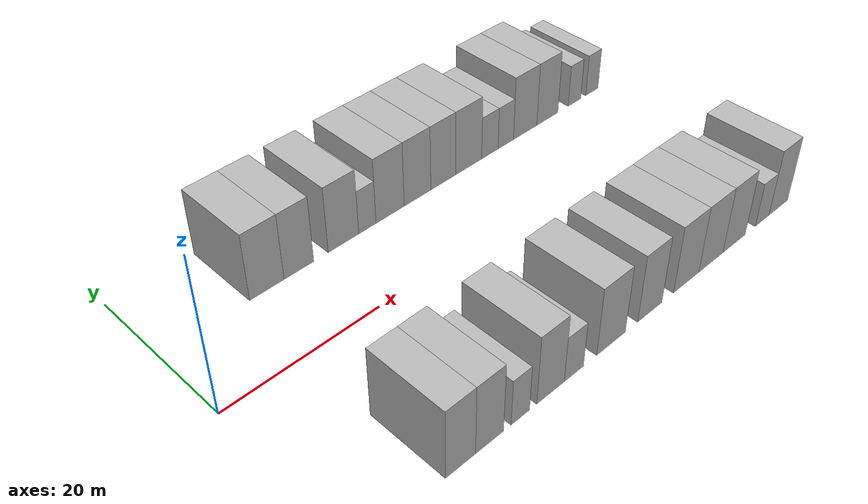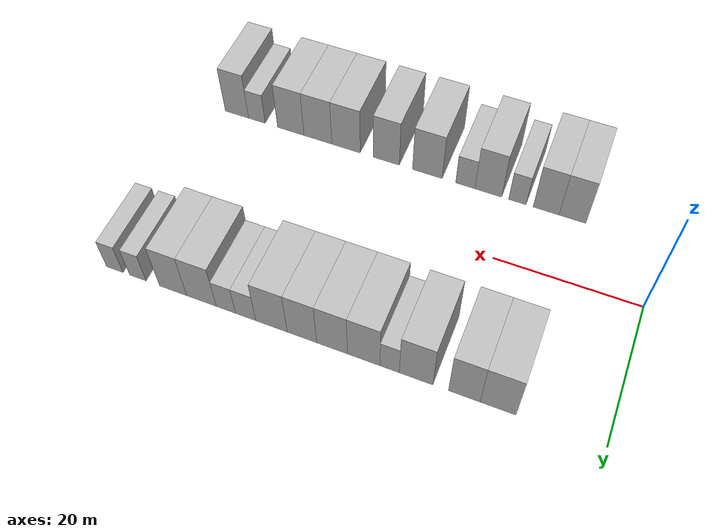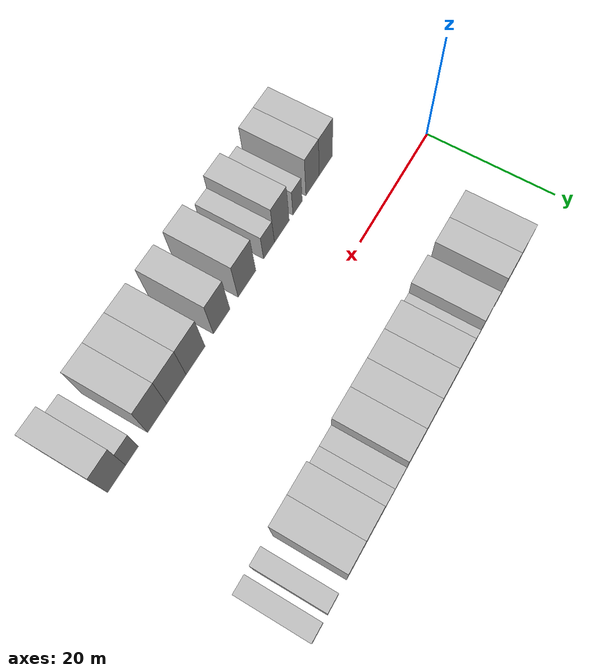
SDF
<sdf version="1.6">
 <world name="default">
  <model name="building_1">
   <static>1</static>
   <pose>13.2403 15.0000 0 0.000000 0.000000 1.570796</pose>
   <link name="link">
    <pose>0 0 4.50 0 0 0</pose>
    <collision name="collision"><geometry><box><size>10.0000 4.4805 9.0000</size></box></geometry></collision>
    <visual name="visual">
     <cast_shadows>0</cast_shadows>
     <geometry><box><size>10.0000 4.4805 9.0000</size></box></geometry>
     <material>
      <script>
       <uri>model://HANNAS_wall/materials/scripts</uri>
       <uri>model://HANNAS_wall/materials/textures</uri>
       <name>vrc/HANNAS_wall</name>
      </script>
     </material>
    </visual>
   </link>
  </model>
  <model name="building_2">
   <static>1</static>
   <pose>17.4862 15.0000 0 0.000000 0.000000 1.570796</pose>
   <link name="link">
    <pose>0 0 4.50 0 0 0</pose>
    <collision name="collision"><geometry><box><size>10.0000 4.0113 9.0000</size></box></geometry></collision>
    <visual name="visual">
     <cast_shadows>0</cast_shadows>
     <geometry><box><size>10.0000 4.0113 9.0000</size></box></geometry>
     <material>
      <script>
       <uri>model://HANNAS_wall/materials/scripts</uri>
       <uri>model://HANNAS_wall/materials/textures</uri>
       <name>vrc/HANNAS_wall</name>
      </script>
     </material>
    </visual>
   </link>
  </model>
  <model name="building_3">
   <static>1</static>
   <pose>23.6738 15.0000 0 0.000000 0.000000 1.570796</pose>
   <link name="link">
    <pose>0 0 4.50 0 0 0</pose>
    <collision name="collision"><geometry><box><size>10.0000 4.3640 9.0000</size></box></geometry></collision>
    <visual name="visual">
     <cast_shadows>0</cast_shadows>
     <geometry><box><size>10.0000 4.3640 9.0000</size></box></geometry>
     <material>
      <script>
       <uri>model://HANNAS_wall/materials/scripts</uri>
       <uri>model://HANNAS_wall/materials/textures</uri>
       <name>vrc/HANNAS_wall</name>
      </script>
     </material>
    </visual>
   </link>
  </model>
  <model name="building_4">
   <static>1</static>
   <pose>27.1243 15.0000 0 0.000000 0.000000 1.570796</pose>
   <link name="link">
    <pose>0 0 3.00 0 0 0</pose>
    <collision name="collision"><geometry><box><size>10.0000 2.5370 6.0000</size></box></geometry></collision>
    <visual name="visual">
     <cast_shadows>0</cast_shadows>
     <geometry><box><size>10.0000 2.5370 6.0000</size></box></geometry>
     <material>
      <script>
       <uri>model://HANNAS_wall/materials/scripts</uri>
       <uri>model://HANNAS_wall/materials/textures</uri>
       <name>vrc/HANNAS_wall</name>
      </script>
     </material>
    </visual>
   </link>
  </model>
  <model name="building_5">
   <static>1</static>
   <pose>30.5359 15.0000 0 0.000000 0.000000 1.570796</pose>
   <link name="link">
    <pose>0 0 4.50 0 0 0</pose>
    <collision name="collision"><geometry><box><size>10.0000 4.2863 9.0000</size></box></geometry></collision>
    <visual name="visual">
     <cast_shadows>0</cast_shadows>
     <geometry><box><size>10.0000 4.2863 9.0000</size></box></geometry>
     <material>
      <script>
       <uri>model://HANNAS_wall/materials/scripts</uri>
       <uri>model://HANNAS_wall/materials/textures</uri>
       <name>vrc/HANNAS_wall</name>
      </script>
     </material>
    </visual>
   </link>
  </model>
  <model name="building_6">
   <static>1</static>
   <pose>34.7743 15.0000 0 0.000000 0.000000 1.570796</pose>
   <link name="link">
    <pose>0 0 4.50 0 0 0</pose>
    <collision name="collision"><geometry><box><size>10.0000 4.1904 9.0000</size></box></geometry></collision>
    <visual name="visual">
     <cast_shadows>0</cast_shadows>
     <geometry><box><size>10.0000 4.1904 9.0000</size></box></geometry>
     <material>
      <script>
       <uri>model://HANNAS_wall/materials/scripts</uri>
       <uri>model://HANNAS_wall/materials/textures</uri>
       <name>vrc/HANNAS_wall</name>
      </script>
     </material>
    </visual>
   </link>
  </model>
  <model name="building_7">
   <static>1</static>
   <pose>38.8950 15.0000 0 0.000000 0.000000 1.570796</pose>
   <link name="link">
    <pose>0 0 4.50 0 0 0</pose>
    <collision name="collision"><geometry><box><size>10.0000 4.0511 9.0000</size></box></geometry></collision>
    <visual name="visual">
     <cast_shadows>0</cast_shadows>
     <geometry><box><size>10.0000 4.0511 9.0000</size></box></geometry>
     <material>
      <script>
       <uri>model://HANNAS_wall/materials/scripts</uri>
       <uri>model://HANNAS_wall/materials/textures</uri>
       <name>vrc/HANNAS_wall</name>
      </script>
     </material>
    </visual>
   </link>
  </model>
  <model name="building_8">
   <static>1</static>
   <pose>43.1086 15.0000 0 0.000000 0.000000 1.570796</pose>
   <link name="link">
    <pose>0 0 4.50 0 0 0</pose>
    <collision name="collision"><geometry><box><size>10.0000 4.3761 9.0000</size></box></geometry></collision>
    <visual name="visual">
     <cast_shadows>0</cast_shadows>
     <geometry><box><size>10.0000 4.3761 9.0000</size></box></geometry>
     <material>
      <script>
       <uri>model://HANNAS_wall/materials/scripts</uri>
       <uri>model://HANNAS_wall/materials/textures</uri>
       <name>vrc/HANNAS_wall</name>
      </script>
     </material>
    </visual>
   </link>
  </model>
  <model name="building_9">
   <static>1</static>
   <pose>46.7246 15.0000 0 0.000000 0.000000 1.570796</pose>
   <link name="link">
    <pose>0 0 3.00 0 0 0</pose>
    <collision name="collision"><geometry><box><size>10.0000 2.8559 6.0000</size></box></geometry></collision>
    <visual name="visual">
     <cast_shadows>0</cast_shadows>
     <geometry><box><size>10.0000 2.8559 6.0000</size></box></geometry>
     <material>
      <script>
       <uri>model://HANNAS_wall/materials/scripts</uri>
       <uri>model://HANNAS_wall/materials/textures</uri>
       <name>vrc/HANNAS_wall</name>
      </script>
     </material>
    </visual>
   </link>
  </model>
  <model name="building_10">
   <static>1</static>
   <pose>49.5225 15.0000 0 0.000000 0.000000 1.570796</pose>
   <link name="link">
    <pose>0 0 3.00 0 0 0</pose>
    <collision name="collision"><geometry><box><size>10.0000 2.7400 6.0000</size></box></geometry></collision>
    <visual name="visual">
     <cast_shadows>0</cast_shadows>
     <geometry><box><size>10.0000 2.7400 6.0000</size></box></geometry>
     <material>
      <script>
       <uri>model://HANNAS_wall/materials/scripts</uri>
       <uri>model://HANNAS_wall/materials/textures</uri>
       <name>vrc/HANNAS_wall</name>
      </script>
     </material>
    </visual>
   </link>
  </model>
  <model name="building_11">
   <static>1</static>
   <pose>53.0292 15.0000 0 0.000000 0.000000 1.570796</pose>
   <link name="link">
    <pose>0 0 4.50 0 0 0</pose>
    <collision name="collision"><geometry><box><size>10.0000 4.2733 9.0000</size></box></geometry></collision>
    <visual name="visual">
     <cast_shadows>0</cast_shadows>
     <geometry><box><size>10.0000 4.2733 9.0000</size></box></geometry>
     <material>
      <script>
       <uri>model://HANNAS_wall/materials/scripts</uri>
       <uri>model://HANNAS_wall/materials/textures</uri>
       <name>vrc/HANNAS_wall</name>
      </script>
     </material>
    </visual>
   </link>
  </model>
  <model name="building_12">
   <static>1</static>
   <pose>57.1540 15.0000 0 0.000000 0.000000 1.570796</pose>
   <link name="link">
    <pose>0 0 4.50 0 0 0</pose>
    <collision name="collision"><geometry><box><size>10.0000 3.9763 9.0000</size></box></geometry></collision>
    <visual name="visual">
     <cast_shadows>0</cast_shadows>
     <geometry><box><size>10.0000 3.9763 9.0000</size></box></geometry>
     <material>
      <script>
       <uri>model://HANNAS_wall/materials/scripts</uri>
       <uri>model://HANNAS_wall/materials/textures</uri>
       <name>vrc/HANNAS_wall</name>
      </script>
     </material>
    </visual>
   </link>
  </model>
  <model name="building_13">
   <static>1</static>
   <pose>62.3634 15.0000 0 0.000000 0.000000 1.570796</pose>
   <link name="link">
    <pose>0 0 3.00 0 0 0</pose>
    <collision name="collision"><geometry><box><size>10.0000 2.4425 6.0000</size></box></geometry></collision>
    <visual name="visual">
     <cast_shadows>0</cast_shadows>
     <geometry><box><size>10.0000 2.4425 6.0000</size></box></geometry>
     <material>
      <script>
       <uri>model://HANNAS_wall/materials/scripts</uri>
       <uri>model://HANNAS_wall/materials/textures</uri>
       <name>vrc/HANNAS_wall</name>
      </script>
     </material>
    </visual>
   </link>
  </model>
  <model name="building_14">
   <static>1</static>
   <pose>65.8140 15.0000 0 0.000000 0.000000 1.570796</pose>
   <link name="link">
    <pose>0 0 3.00 0 0 0</pose>
    <collision name="collision"><geometry><box><size>10.0000 2.4586 6.0000</size></box></geometry></collision>
    <visual name="visual">
     <cast_shadows>0</cast_shadows>
     <geometry><box><size>10.0000 2.4586 6.0000</size></box></geometry>
     <material>
      <script>
       <uri>model://HANNAS_wall/materials/scripts</uri>
       <uri>model://HANNAS_wall/materials/textures</uri>
       <name>vrc/HANNAS_wall</name>
      </script>
     </material>
    </visual>
   </link>
  </model>
  <model name="building_56">
   <static>1</static>
   <pose>11.8837 -15.0000 0 0.000000 0.000000 1.570796</pose>
   <link name="link">
    <pose>0 0 4.50 0 0 0</pose>
    <collision name="collision"><geometry><box><size>10.0000 3.7673 9.0000</size></box></geometry></collision>
    <visual name="visual">
     <cast_shadows>0</cast_shadows>
     <geometry><box><size>10.0000 3.7673 9.0000</size></box></geometry>
     <material>
      <script>
       <uri>model://HANNAS_wall/materials/scripts</uri>
       <uri>model://HANNAS_wall/materials/textures</uri>
       <name>vrc/HANNAS_wall</name>
      </script>
     </material>
    </visual>
   </link>
  </model>
  <model name="building_57">
   <static>1</static>
   <pose>15.5975 -15.0000 0 0.000000 0.000000 1.570796</pose>
   <link name="link">
    <pose>0 0 4.50 0 0 0</pose>
    <collision name="collision"><geometry><box><size>10.0000 3.6603 9.0000</size></box></geometry></collision>
    <visual name="visual">
     <cast_shadows>0</cast_shadows>
     <geometry><box><size>10.0000 3.6603 9.0000</size></box></geometry>
     <material>
      <script>
       <uri>model://HANNAS_wall/materials/scripts</uri>
       <uri>model://HANNAS_wall/materials/textures</uri>
       <name>vrc/HANNAS_wall</name>
      </script>
     </material>
    </visual>
   </link>
  </model>
  <model name="building_58">
   <static>1</static>
   <pose>19.6850 -15.0000 0 0.000000 0.000000 1.570796</pose>
   <link name="link">
    <pose>0 0 3.00 0 0 0</pose>
    <collision name="collision"><geometry><box><size>10.0000 2.5149 6.0000</size></box></geometry></collision>
    <visual name="visual">
     <cast_shadows>0</cast_shadows>
     <geometry><box><size>10.0000 2.5149 6.0000</size></box></geometry>
     <material>
      <script>
       <uri>model://HANNAS_wall/materials/scripts</uri>
       <uri>model://HANNAS_wall/materials/textures</uri>
       <name>vrc/HANNAS_wall</name>
      </script>
     </material>
    </visual>
   </link>
  </model>
  <model name="building_59">
   <static>1</static>
   <pose>23.8967 -15.0000 0 0.000000 0.000000 1.570796</pose>
   <link name="link">
    <pose>0 0 4.50 0 0 0</pose>
    <collision name="collision"><geometry><box><size>10.0000 3.9086 9.0000</size></box></geometry></collision>
    <visual name="visual">
     <cast_shadows>0</cast_shadows>
     <geometry><box><size>10.0000 3.9086 9.0000</size></box></geometry>
     <material>
      <script>
       <uri>model://HANNAS_wall/materials/scripts</uri>
       <uri>model://HANNAS_wall/materials/textures</uri>
       <name>vrc/HANNAS_wall</name>
      </script>
     </material>
    </visual>
   </link>
  </model>
  <model name="building_60">
   <static>1</static>
   <pose>27.2649 -15.0000 0 0.000000 0.000000 1.570796</pose>
   <link name="link">
    <pose>0 0 3.00 0 0 0</pose>
    <collision name="collision"><geometry><box><size>10.0000 2.8278 6.0000</size></box></geometry></collision>
    <visual name="visual">
     <cast_shadows>0</cast_shadows>
     <geometry><box><size>10.0000 2.8278 6.0000</size></box></geometry>
     <material>
      <script>
       <uri>model://HANNAS_wall/materials/scripts</uri>
       <uri>model://HANNAS_wall/materials/textures</uri>
       <name>vrc/HANNAS_wall</name>
      </script>
     </material>
    </visual>
   </link>
  </model>
  <model name="building_61">
   <static>1</static>
   <pose>32.9056 -15.0000 0 0.000000 0.000000 1.570796</pose>
   <link name="link">
    <pose>0 0 4.50 0 0 0</pose>
    <collision name="collision"><geometry><box><size>10.0000 4.4535 9.0000</size></box></geometry></collision>
    <visual name="visual">
     <cast_shadows>0</cast_shadows>
     <geometry><box><size>10.0000 4.4535 9.0000</size></box></geometry>
     <material>
      <script>
       <uri>model://HANNAS_wall/materials/scripts</uri>
       <uri>model://HANNAS_wall/materials/textures</uri>
       <name>vrc/HANNAS_wall</name>
      </script>
     </material>
    </visual>
   </link>
  </model>
  <model name="building_62">
   <static>1</static>
   <pose>39.1296 -15.0000 0 0.000000 0.000000 1.570796</pose>
   <link name="link">
    <pose>0 0 4.50 0 0 0</pose>
    <collision name="collision"><geometry><box><size>10.0000 3.9947 9.0000</size></box></geometry></collision>
    <visual name="visual">
     <cast_shadows>0</cast_shadows>
     <geometry><box><size>10.0000 3.9947 9.0000</size></box></geometry>
     <material>
      <script>
       <uri>model://HANNAS_wall/materials/scripts</uri>
       <uri>model://HANNAS_wall/materials/textures</uri>
       <name>vrc/HANNAS_wall</name>
      </script>
     </material>
    </visual>
   </link>
  </model>
  <model name="building_63">
   <static>1</static>
   <pose>45.3439 -15.0000 0 0.000000 0.000000 1.570796</pose>
   <link name="link">
    <pose>0 0 4.50 0 0 0</pose>
    <collision name="collision"><geometry><box><size>10.0000 4.4339 9.0000</size></box></geometry></collision>
    <visual name="visual">
     <cast_shadows>0</cast_shadows>
     <geometry><box><size>10.0000 4.4339 9.0000</size></box></geometry>
     <material>
      <script>
       <uri>model://HANNAS_wall/materials/scripts</uri>
       <uri>model://HANNAS_wall/materials/textures</uri>
       <name>vrc/HANNAS_wall</name>
      </script>
     </material>
    </visual>
   </link>
  </model>
  <model name="building_64">
   <static>1</static>
   <pose>49.7666 -15.0000 0 0.000000 0.000000 1.570796</pose>
   <link name="link">
    <pose>0 0 4.50 0 0 0</pose>
    <collision name="collision"><geometry><box><size>10.0000 4.4116 9.0000</size></box></geometry></collision>
    <visual name="visual">
     <cast_shadows>0</cast_shadows>
     <geometry><box><size>10.0000 4.4116 9.0000</size></box></geometry>
     <material>
      <script>
       <uri>model://HANNAS_wall/materials/scripts</uri>
       <uri>model://HANNAS_wall/materials/textures</uri>
       <name>vrc/HANNAS_wall</name>
      </script>
     </material>
    </visual>
   </link>
  </model>
  <model name="building_65">
   <static>1</static>
   <pose>54.0884 -15.0000 0 0.000000 0.000000 1.570796</pose>
   <link name="link">
    <pose>0 0 4.50 0 0 0</pose>
    <collision name="collision"><geometry><box><size>10.0000 4.2319 9.0000</size></box></geometry></collision>
    <visual name="visual">
     <cast_shadows>0</cast_shadows>
     <geometry><box><size>10.0000 4.2319 9.0000</size></box></geometry>
     <material>
      <script>
       <uri>model://HANNAS_wall/materials/scripts</uri>
       <uri>model://HANNAS_wall/materials/textures</uri>
       <name>vrc/HANNAS_wall</name>
      </script>
     </material>
    </visual>
   </link>
  </model>
  <model name="building_66">
   <static>1</static>
   <pose>59.5609 -15.0000 0 0.000000 0.000000 1.570796</pose>
   <link name="link">
    <pose>0 0 3.00 0 0 0</pose>
    <collision name="collision"><geometry><box><size>10.0000 2.7131 6.0000</size></box></geometry></collision>
    <visual name="visual">
     <cast_shadows>0</cast_shadows>
     <geometry><box><size>10.0000 2.7131 6.0000</size></box></geometry>
     <material>
      <script>
       <uri>model://HANNAS_wall/materials/scripts</uri>
       <uri>model://HANNAS_wall/materials/textures</uri>
       <name>vrc/HANNAS_wall</name>
      </script>
     </material>
    </visual>
   </link>
  </model>
  <model name="building_67">
   <static>1</static>
   <pose>62.8295 -15.0000 0 0.000000 0.000000 1.570796</pose>
   <link name="link">
    <pose>0 0 4.50 0 0 0</pose>
    <collision name="collision"><geometry><box><size>10.0000 3.8240 9.0000</size></box></geometry></collision>
    <visual name="visual">
     <cast_shadows>0</cast_shadows>
     <geometry><box><size>10.0000 3.8240 9.0000</size></box></geometry>
     <material>
      <script>
       <uri>model://HANNAS_wall/materials/scripts</uri>
       <uri>model://HANNAS_wall/materials/textures</uri>
       <name>vrc/HANNAS_wall</name>
      </script>
     </material>
    </visual>
   </link>
  </model>
 </world>
</sdf>
